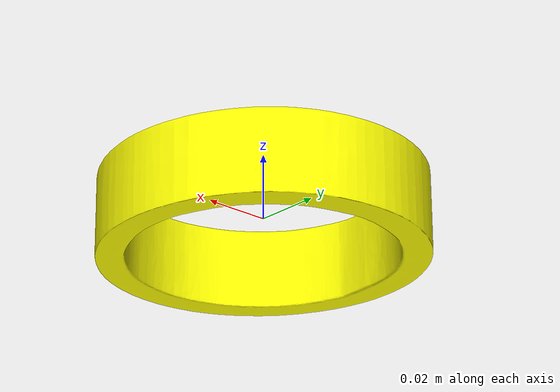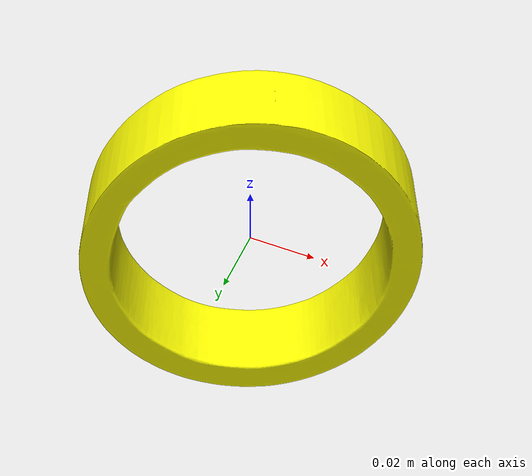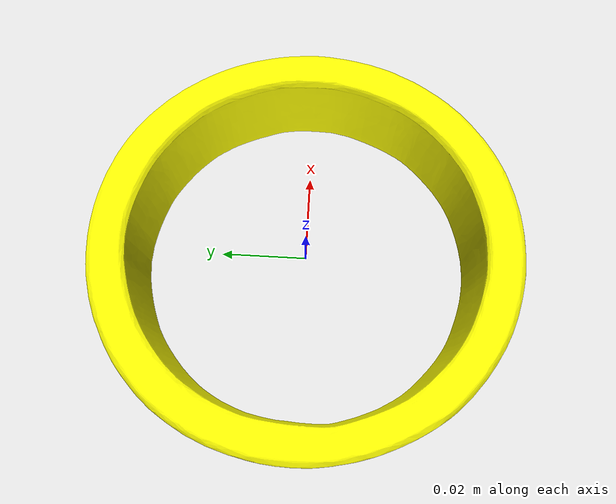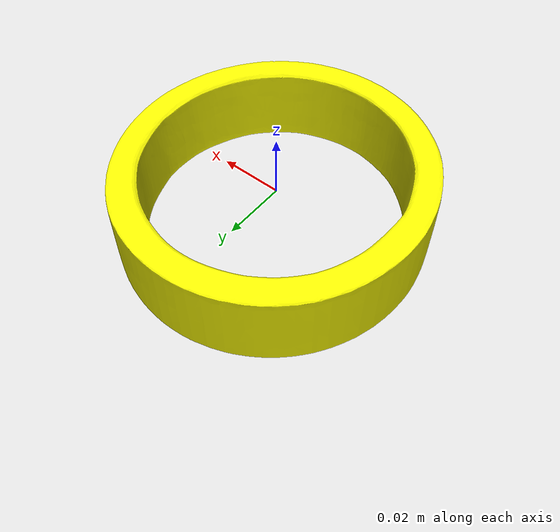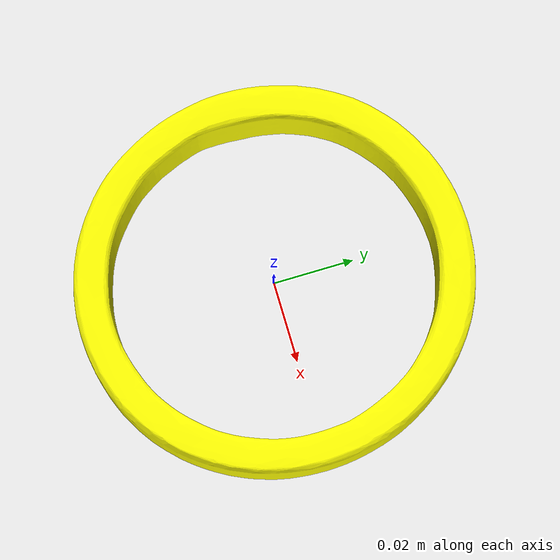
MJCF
<?xml version="1.0" ?>
<mujoco model="yellow_tape">
  <asset>
    <mesh file="./yellow_tape.obj" name="yellow_tape_mesh" scale="1 1 1"/>
  </asset>
  <worldbody>
    <body>
      <body name="object">
        <geom type="mesh" mesh="yellow_tape_mesh" group="0" rgba="1 1 0 1" pos="0 0 0" solimp="0.998 0.998 0.001" solref="0.001 1" density="100" friction="0.95 0.3 0.1" condim="4"/>
        <!-- Collision geometry (decomposed primitives) -->
      </body>
      <site name="bottom_site" pos="-0.00015647895634174347 -3.774091601371765e-05 -0.012816530652344227" size="0.002" rgba="0 0 0 0"/>
      <site rgba="0 0 0 0" size="0.005" pos="0 0 0.0254" name="top_site"/>
      <site rgba="0 0 0 0" size="0.005" pos="0.095 0.095 0" name="horizontal_radius_site"/>
    </body>
  </worldbody>
</mujoco>
